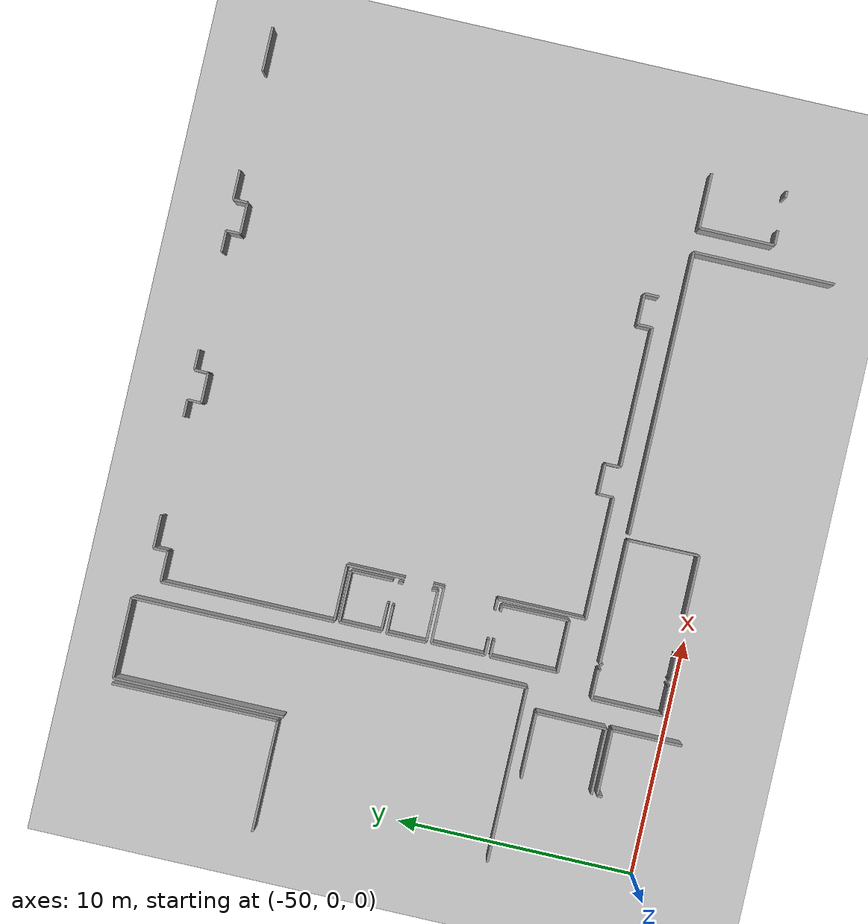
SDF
<sdf version="1.6">
 <world name="default">
  <model name="ground_plane">
   <static>1</static>
   <link name="link">
    <collision name="collision">
     <geometry><plane><normal>0 0 1</normal><size>100 100</size></plane></geometry>
     <surface><friction><ode><mu>100</mu><mu2>50</mu2></ode></friction></surface>
    </collision>
    <visual name="visual">
     <cast_shadows>0</cast_shadows>
     <geometry><plane><normal>0 0 1</normal><size>100 100</size></plane></geometry>
     <material>
      <script><uri>file://media/materials/scripts/gazebo.material</uri><name>Gazebo/Grey</name></script>
     </material>
    </visual>
   </link>
  </model>
  <model name="50010539">
   <static>1</static>
   <link name="Wall_16">
    <collision name="Wall_16_Collision">
     <geometry><box><size>4.6807753868 0.1 2.5</size></box></geometry>
     <pose>2.3403876934 0 1.25 0 0 0</pose>
    </collision>
    <visual name="Wall_16_Visual">
     <pose>2.3403876934 0 1.25 0 0 0</pose>
     <geometry><box><size>4.6807753868 0.1 2.5</size></box></geometry>
     <material>
      <script><uri>file://media/materials/scripts/gazebo.material</uri><name>Gazebo/Grey</name></script>
      <ambient>1 1 1 1</ambient>
     </material>
    </visual>
    <pose>15.9443357638 -7.03018216001 0 0 0 3.14159265359</pose>
   </link>
   <link name="Wall_21">
    <collision name="Wall_21_Collision">
     <geometry><box><size>7.02182654893 0.1 2.5</size></box></geometry>
     <pose>3.51091327446 0 1.25 0 0 0</pose>
    </collision>
    <visual name="Wall_21_Visual">
     <pose>3.51091327446 0 1.25 0 0 0</pose>
     <geometry><box><size>7.02182654893 0.1 2.5</size></box></geometry>
     <material>
      <script><uri>file://media/materials/scripts/gazebo.material</uri><name>Gazebo/Grey</name></script>
      <ambient>1 1 1 1</ambient>
     </material>
    </visual>
    <pose>15.9243921648 -0.00838393333503 0 0 0 -1.56795609346</pose>
   </link>
   <link name="Wall_22">
    <collision name="Wall_22_Collision">
     <geometry><box><size>7.37582886614 0.1 2.5</size></box></geometry>
     <pose>3.68791443307 0 1.25 0 0 0</pose>
    </collision>
    <visual name="Wall_22_Visual">
     <pose>3.68791443307 0 1.25 0 0 0</pose>
     <geometry><box><size>7.37582886614 0.1 2.5</size></box></geometry>
     <material>
      <script><uri>file://media/materials/scripts/gazebo.material</uri><name>Gazebo/Grey</name></script>
      <ambient>1 1 1 1</ambient>
     </material>
    </visual>
    <pose>19.5602245878 -16.7629125276 0 0 0 3.14159265359</pose>
   </link>
   <link name="Wall_26">
    <collision name="Wall_26_Collision">
     <geometry><box><size>7.21640710348 0.1 2.5</size></box></geometry>
     <pose>3.60820355174 0 1.25 0 0 0</pose>
    </collision>
    <visual name="Wall_26_Visual">
     <pose>3.60820355174 0 1.25 0 0 0</pose>
     <geometry><box><size>7.21640710348 0.1 2.5</size></box></geometry>
     <material>
      <script><uri>file://media/materials/scripts/gazebo.material</uri><name>Gazebo/Grey</name></script>
      <ambient>1 1 1 1</ambient>
     </material>
    </visual>
    <pose>16.1513935113 -7.23063438429 0 0 0 1.57079632679</pose>
   </link>
   <link name="Wall_27">
    <collision name="Wall_27_Collision">
     <geometry><box><size>3.39536597139 0.1 2.5</size></box></geometry>
     <pose>1.6976829857 0 1.25 0 0 0</pose>
    </collision>
    <visual name="Wall_27_Visual">
     <pose>1.6976829857 0 1.25 0 0 0</pose>
     <geometry><box><size>3.39536597139 0.1 2.5</size></box></geometry>
     <material>
      <script><uri>file://media/materials/scripts/gazebo.material</uri><name>Gazebo/Grey</name></script>
      <ambient>1 1 1 1</ambient>
     </material>
    </visual>
    <pose>16.1513935113 -0.014227280811 0 0 0 0.0</pose>
   </link>
   <link name="Wall_28">
    <collision name="Wall_28_Collision">
     <geometry><box><size>16.7486906595 0.1 2.5</size></box></geometry>
     <pose>8.37434532973 0 1.25 0 0 0</pose>
    </collision>
    <visual name="Wall_28_Visual">
     <pose>8.37434532973 0 1.25 0 0 0</pose>
     <geometry><box><size>16.7486906595 0.1 2.5</size></box></geometry>
     <material>
      <script><uri>file://media/materials/scripts/gazebo.material</uri><name>Gazebo/Grey</name></script>
      <ambient>1 1 1 1</ambient>
     </material>
    </visual>
    <pose>19.5467594827 -0.014227280811 0 0 0 -1.569992377</pose>
   </link>
   <link name="Wall_91">
    <collision name="Wall_91_Collision">
     <geometry><box><size>2.76390335611 0.1 2.5</size></box></geometry>
     <pose>1.38195167806 0 1.25 0 0 0</pose>
    </collision>
    <visual name="Wall_91_Visual">
     <pose>1.38195167806 0 1.25 0 0 0</pose>
     <geometry><box><size>2.76390335611 0.1 2.5</size></box></geometry>
     <material>
      <script><uri>file://media/materials/scripts/gazebo.material</uri><name>Gazebo/Grey</name></script>
      <ambient>1 1 1 1</ambient>
     </material>
    </visual>
    <pose>18.6337999543 -20.3324356597 0 0 0 3.14159265359</pose>
   </link>
   <link name="Wall_94">
    <collision name="Wall_94_Collision">
     <geometry><box><size>2.77025482076 0.1 2.5</size></box></geometry>
     <pose>1.38512741038 0 1.25 0 0 0</pose>
    </collision>
    <visual name="Wall_94_Visual">
     <pose>1.38512741038 0 1.25 0 0 0</pose>
     <geometry><box><size>2.77025482076 0.1 2.5</size></box></geometry>
     <material>
      <script><uri>file://media/materials/scripts/gazebo.material</uri><name>Gazebo/Grey</name></script>
      <ambient>1 1 1 1</ambient>
     </material>
    </visual>
    <pose>15.8698965982 -17.3577907065 0 0 0 0.0</pose>
   </link>
   <link name="Wall_95">
    <collision name="Wall_95_Collision">
     <geometry><box><size>2.97465173395 0.1 2.5</size></box></geometry>
     <pose>1.48732586697 0 1.25 0 0 0</pose>
    </collision>
    <visual name="Wall_95_Visual">
     <pose>1.48732586697 0 1.25 0 0 0</pose>
     <geometry><box><size>2.97465173395 0.1 2.5</size></box></geometry>
     <material>
      <script><uri>file://media/materials/scripts/gazebo.material</uri><name>Gazebo/Grey</name></script>
      <ambient>1 1 1 1</ambient>
     </material>
    </visual>
    <pose>18.6401514189 -17.3577907065 0 0 0 -1.57293152447</pose>
   </link>
   <link name="Wall_98">
    <collision name="Wall_98_Collision">
     <geometry><box><size>0.208455069739 0.1 2.5</size></box></geometry>
     <pose>0.10422753487 0 1.25 0 0 0</pose>
    </collision>
    <visual name="Wall_98_Visual">
     <pose>0.10422753487 0 1.25 0 0 0</pose>
     <geometry><box><size>0.208455069739 0.1 2.5</size></box></geometry>
     <material>
      <script><uri>file://media/materials/scripts/gazebo.material</uri><name>Gazebo/Grey</name></script>
      <ambient>1 1 1 1</ambient>
     </material>
    </visual>
    <pose>15.8782805315 -20.7808490638 0 0 0 1.57079632679</pose>
   </link>
   <link name="Wall_99">
    <collision name="Wall_99_Collision">
     <geometry><box><size>2.76822235207 0.1 2.5</size></box></geometry>
     <pose>1.38411117604 0 1.25 0 0 0</pose>
    </collision>
    <visual name="Wall_99_Visual">
     <pose>1.38411117604 0 1.25 0 0 0</pose>
     <geometry><box><size>2.76822235207 0.1 2.5</size></box></geometry>
     <material>
      <script><uri>file://media/materials/scripts/gazebo.material</uri><name>Gazebo/Grey</name></script>
      <ambient>1 1 1 1</ambient>
     </material>
    </visual>
    <pose>15.8782805315 -20.5723939941 0 0 0 0.0</pose>
   </link>
   <link name="Wall_100">
    <collision name="Wall_100_Collision">
     <geometry><box><size>2.95459359299 0.1 2.5</size></box></geometry>
     <pose>1.47729679649 0 1.25 0 0 0</pose>
    </collision>
    <visual name="Wall_100_Visual">
     <pose>1.47729679649 0 1.25 0 0 0</pose>
     <geometry><box><size>2.95459359299 0.1 2.5</size></box></geometry>
     <material>
      <script><uri>file://media/materials/scripts/gazebo.material</uri><name>Gazebo/Grey</name></script>
      <ambient>1 1 1 1</ambient>
     </material>
    </visual>
    <pose>18.6465028836 -20.5723939941 0 0 0 -1.56718483727</pose>
   </link>
   <link name="Wall_136">
    <collision name="Wall_136_Collision">
     <geometry><box><size>2.57729732476 0.1 2.5</size></box></geometry>
     <pose>1.28864866238 0 1.25 0 0 0</pose>
    </collision>
    <visual name="Wall_136_Visual">
     <pose>1.28864866238 0 1.25 0 0 0</pose>
     <geometry><box><size>2.57729732476 0.1 2.5</size></box></geometry>
     <material>
      <script><uri>file://media/materials/scripts/gazebo.material</uri><name>Gazebo/Grey</name></script>
      <ambient>1 1 1 1</ambient>
     </material>
    </visual>
    <pose>26.4530880821 -22.4741495389 0 0 0 3.14159265359</pose>
   </link>
   <link name="Wall_137">
    <collision name="Wall_137_Collision">
     <geometry><box><size>1.09766012042 0.1 2.5</size></box></geometry>
     <pose>0.548830060212 0 1.25 0 0 0</pose>
    </collision>
    <visual name="Wall_137_Visual">
     <pose>0.548830060212 0 1.25 0 0 0</pose>
     <geometry><box><size>1.09766012042 0.1 2.5</size></box></geometry>
     <material>
      <script><uri>file://media/materials/scripts/gazebo.material</uri><name>Gazebo/Grey</name></script>
      <ambient>1 1 1 1</ambient>
     </material>
    </visual>
    <pose>22.2792866035 -22.4741495389 0 0 0 3.14159265359</pose>
   </link>
   <link name="Wall_138">
    <collision name="Wall_138_Collision">
     <geometry><box><size>0.0896826808262 0.1 2.5</size></box></geometry>
     <pose>0.0448413404131 0 1.25 0 0 0</pose>
    </collision>
    <visual name="Wall_138_Visual">
     <pose>0.0448413404131 0 1.25 0 0 0</pose>
     <geometry><box><size>0.0896826808262 0.1 2.5</size></box></geometry>
     <material>
      <script><uri>file://media/materials/scripts/gazebo.material</uri><name>Gazebo/Grey</name></script>
      <ambient>1 1 1 1</ambient>
     </material>
    </visual>
    <pose>21.1816264831 -22.4741495389 0 0 0 1.57079632679</pose>
   </link>
   <link name="Wall_139">
    <collision name="Wall_139_Collision">
     <geometry><box><size>0.131856406087 0.1 2.5</size></box></geometry>
     <pose>0.0659282030436 0 1.25 0 0 0</pose>
    </collision>
    <visual name="Wall_139_Visual">
     <pose>0.0659282030436 0 1.25 0 0 0</pose>
     <geometry><box><size>0.131856406087 0.1 2.5</size></box></geometry>
     <material>
      <script><uri>file://media/materials/scripts/gazebo.material</uri><name>Gazebo/Grey</name></script>
      <ambient>1 1 1 1</ambient>
     </material>
    </visual>
    <pose>21.1816264831 -19.6003658444 0 0 0 1.57079632679</pose>
   </link>
   <link name="Wall_140">
    <collision name="Wall_140_Collision">
     <geometry><box><size>5.25761540611 0.1 2.5</size></box></geometry>
     <pose>2.62880770306 0 1.25 0 0 0</pose>
    </collision>
    <visual name="Wall_140_Visual">
     <pose>2.62880770306 0 1.25 0 0 0</pose>
     <geometry><box><size>5.25761540611 0.1 2.5</size></box></geometry>
     <material>
      <script><uri>file://media/materials/scripts/gazebo.material</uri><name>Gazebo/Grey</name></script>
      <ambient>1 1 1 1</ambient>
     </material>
    </visual>
    <pose>21.1816264831 -19.4685094383 0 0 0 0.0</pose>
   </link>
   <link name="Wall_141">
    <collision name="Wall_141_Collision">
     <geometry><box><size>3.00567199332 0.1 2.5</size></box></geometry>
     <pose>1.50283599666 0 1.25 0 0 0</pose>
    </collision>
    <visual name="Wall_141_Visual">
     <pose>1.50283599666 0 1.25 0 0 0</pose>
     <geometry><box><size>3.00567199332 0.1 2.5</size></box></geometry>
     <material>
      <script><uri>file://media/materials/scripts/gazebo.material</uri><name>Gazebo/Grey</name></script>
      <ambient>1 1 1 1</ambient>
     </material>
    </visual>
    <pose>26.4392418892 -19.4685094383 0 0 0 -1.56618962256</pose>
   </link>
   <link name="Wall_142">
    <collision name="Wall_142_Collision">
     <geometry><box><size>1.27105510531 0.1 2.5</size></box></geometry>
     <pose>0.635527552654 0 1.25 0 0 0</pose>
    </collision>
    <visual name="Wall_142_Visual">
     <pose>0.635527552654 0 1.25 0 0 0</pose>
     <geometry><box><size>1.27105510531 0.1 2.5</size></box></geometry>
     <material>
      <script><uri>file://media/materials/scripts/gazebo.material</uri><name>Gazebo/Grey</name></script>
      <ambient>1 1 1 1</ambient>
     </material>
    </visual>
    <pose>20.9630090699 -22.4712278651 0 0 0 3.14159265359</pose>
   </link>
   <link name="Wall_143">
    <collision name="Wall_143_Collision">
     <geometry><box><size>3.00691039354 0.1 2.5</size></box></geometry>
     <pose>1.50345519677 0 1.25 0 0 0</pose>
    </collision>
    <visual name="Wall_143_Visual">
     <pose>1.50345519677 0 1.25 0 0 0</pose>
     <geometry><box><size>3.00691039354 0.1 2.5</size></box></geometry>
     <material>
      <script><uri>file://media/materials/scripts/gazebo.material</uri><name>Gazebo/Grey</name></script>
      <ambient>1 1 1 1</ambient>
     </material>
    </visual>
    <pose>19.6919539646 -22.4712278651 0 0 0 1.57079632679</pose>
   </link>
   <link name="Wall_144">
    <collision name="Wall_144_Collision">
     <geometry><box><size>1.26622799217 0.1 2.5</size></box></geometry>
     <pose>0.633113996087 0 1.25 0 0 0</pose>
    </collision>
    <visual name="Wall_144_Visual">
     <pose>0.633113996087 0 1.25 0 0 0</pose>
     <geometry><box><size>1.26622799217 0.1 2.5</size></box></geometry>
     <material>
      <script><uri>file://media/materials/scripts/gazebo.material</uri><name>Gazebo/Grey</name></script>
      <ambient>1 1 1 1</ambient>
     </material>
    </visual>
    <pose>19.6919539646 -19.4643174716 0 0 0 0.0</pose>
   </link>
   <link name="Wall_145">
    <collision name="Wall_145_Collision">
     <geometry><box><size>0.108610045476 0.1 2.5</size></box></geometry>
     <pose>0.0543050227382 0 1.25 0 0 0</pose>
    </collision>
    <visual name="Wall_145_Visual">
     <pose>0.0543050227382 0 1.25 0 0 0</pose>
     <geometry><box><size>0.108610045476 0.1 2.5</size></box></geometry>
     <material>
      <script><uri>file://media/materials/scripts/gazebo.material</uri><name>Gazebo/Grey</name></script>
      <ambient>1 1 1 1</ambient>
     </material>
    </visual>
    <pose>20.9581819568 -19.4643174716 0 0 0 -1.57079632679</pose>
   </link>
   <link name="Wall_146">
    <collision name="Wall_146_Collision">
     <geometry><box><size>0.0952673118616 0.1 2.5</size></box></geometry>
     <pose>0.0476336559308 0 1.25 0 0 0</pose>
    </collision>
    <visual name="Wall_146_Visual">
     <pose>0.0476336559308 0 1.25 0 0 0</pose>
     <geometry><box><size>0.0952673118616 0.1 2.5</size></box></geometry>
     <material>
      <script><uri>file://media/materials/scripts/gazebo.material</uri><name>Gazebo/Grey</name></script>
      <ambient>1 1 1 1</ambient>
     </material>
    </visual>
    <pose>20.9581819568 -22.3760829247 0 0 0 -1.52010547682</pose>
   </link>
   <link name="Wall_150">
    <collision name="Wall_150_Collision">
     <geometry><box><size>11.9750514469 0.1 2.5</size></box></geometry>
     <pose>5.98752572343 0 1.25 0 0 0</pose>
    </collision>
    <visual name="Wall_150_Visual">
     <pose>5.98752572343 0 1.25 0 0 0</pose>
     <geometry><box><size>11.9750514469 0.1 2.5</size></box></geometry>
     <material>
      <script><uri>file://media/materials/scripts/gazebo.material</uri><name>Gazebo/Grey</name></script>
      <ambient>1 1 1 1</ambient>
     </material>
    </visual>
    <pose>26.6617972104 -19.4582200655 0 0 0 0.0</pose>
   </link>
   <link name="Wall_151">
    <collision name="Wall_151_Collision">
     <geometry><box><size>5.96897944666 0.1 2.5</size></box></geometry>
     <pose>2.98448972333 0 1.25 0 0 0</pose>
    </collision>
    <visual name="Wall_151_Visual">
     <pose>2.98448972333 0 1.25 0 0 0</pose>
     <geometry><box><size>5.96897944666 0.1 2.5</size></box></geometry>
     <material>
      <script><uri>file://media/materials/scripts/gazebo.material</uri><name>Gazebo/Grey</name></script>
      <ambient>1 1 1 1</ambient>
     </material>
    </visual>
    <pose>38.6368486573 -19.4582200655 0 0 0 -1.57079632679</pose>
   </link>
   <link name="Wall_194">
    <collision name="Wall_194_Collision">
     <geometry><box><size>0.285561850563 0.1 2.5</size></box></geometry>
     <pose>0.142780925281 0 1.25 0 0 0</pose>
    </collision>
    <visual name="Wall_194_Visual">
     <pose>0.142780925281 0 1.25 0 0 0</pose>
     <geometry><box><size>0.285561850563 0.1 2.5</size></box></geometry>
     <material>
      <script><uri>file://media/materials/scripts/gazebo.material</uri><name>Gazebo/Grey</name></script>
      <ambient>1 1 1 1</ambient>
     </material>
    </visual>
    <pose>41.9534564671 -22.6483066995 0 0 0 3.14159265359</pose>
   </link>
   <link name="Wall_195">
    <collision name="Wall_195_Collision">
     <geometry><box><size>0.624348974874 0.1 2.5</size></box></geometry>
     <pose>0.312174487437 0 1.25 0 0 0</pose>
    </collision>
    <visual name="Wall_195_Visual">
     <pose>0.312174487437 0 1.25 0 0 0</pose>
     <geometry><box><size>0.624348974874 0.1 2.5</size></box></geometry>
     <material>
      <script><uri>file://media/materials/scripts/gazebo.material</uri><name>Gazebo/Grey</name></script>
      <ambient>1 1 1 1</ambient>
     </material>
    </visual>
    <pose>40.2797185031 -22.6483066995 0 0 0 3.14159265359</pose>
   </link>
   <link name="Wall_196">
    <collision name="Wall_196_Collision">
     <geometry><box><size>3.19008663398 0.1 2.5</size></box></geometry>
     <pose>1.59504331699 0 1.25 0 0 0</pose>
    </collision>
    <visual name="Wall_196_Visual">
     <pose>1.59504331699 0 1.25 0 0 0</pose>
     <geometry><box><size>3.19008663398 0.1 2.5</size></box></geometry>
     <material>
      <script><uri>file://media/materials/scripts/gazebo.material</uri><name>Gazebo/Grey</name></script>
      <ambient>1 1 1 1</ambient>
     </material>
    </visual>
    <pose>39.6553695282 -22.6483066995 0 0 0 1.57079632679</pose>
   </link>
   <link name="Wall_197">
    <collision name="Wall_197_Collision">
     <geometry><box><size>2.31206016107 0.1 2.5</size></box></geometry>
     <pose>1.15603008054 0 1.25 0 0 0</pose>
    </collision>
    <visual name="Wall_197_Visual">
     <pose>1.15603008054 0 1.25 0 0 0</pose>
     <geometry><box><size>2.31206016107 0.1 2.5</size></box></geometry>
     <material>
      <script><uri>file://media/materials/scripts/gazebo.material</uri><name>Gazebo/Grey</name></script>
      <ambient>1 1 1 1</ambient>
     </material>
    </visual>
    <pose>39.6553695282 -19.4582200655 0 0 0 0.0</pose>
   </link>
   <link name="Wall_216">
    <collision name="Wall_216_Collision">
     <geometry><box><size>0.607454078911 0.1 2.5</size></box></geometry>
     <pose>0.303727039455 0 1.25 0 0 0</pose>
    </collision>
    <visual name="Wall_216_Visual">
     <pose>0.303727039455 0 1.25 0 0 0</pose>
     <geometry><box><size>0.607454078911 0.1 2.5</size></box></geometry>
     <material>
      <script><uri>file://media/materials/scripts/gazebo.material</uri><name>Gazebo/Grey</name></script>
      <ambient>1 1 1 1</ambient>
     </material>
    </visual>
    <pose>36.5159675821 -18.4755214552 0 0 0 1.57079632679</pose>
   </link>
   <link name="Wall_217">
    <collision name="Wall_217_Collision">
     <geometry><box><size>1.3037016336 0.1 2.5</size></box></geometry>
     <pose>0.651850816798 0 1.25 0 0 0</pose>
    </collision>
    <visual name="Wall_217_Visual">
     <pose>0.651850816798 0 1.25 0 0 0</pose>
     <geometry><box><size>1.3037016336 0.1 2.5</size></box></geometry>
     <material>
      <script><uri>file://media/materials/scripts/gazebo.material</uri><name>Gazebo/Grey</name></script>
      <ambient>1 1 1 1</ambient>
     </material>
    </visual>
    <pose>36.5159675821 -17.8680673763 0 0 0 3.14159265359</pose>
   </link>
   <link name="Wall_218">
    <collision name="Wall_218_Collision">
     <geometry><box><size>0.626508472854 0.1 2.5</size></box></geometry>
     <pose>0.313254236427 0 1.25 0 0 0</pose>
    </collision>
    <visual name="Wall_218_Visual">
     <pose>0.313254236427 0 1.25 0 0 0</pose>
     <geometry><box><size>0.626508472854 0.1 2.5</size></box></geometry>
     <material>
      <script><uri>file://media/materials/scripts/gazebo.material</uri><name>Gazebo/Grey</name></script>
      <ambient>1 1 1 1</ambient>
     </material>
    </visual>
    <pose>35.2122659485 -17.8680673763 0 0 0 -1.57079632679</pose>
   </link>
   <link name="Wall_219">
    <collision name="Wall_219_Collision">
     <geometry><box><size>5.9050837123 0.1 2.5</size></box></geometry>
     <pose>2.95254185615 0 1.25 0 0 0</pose>
    </collision>
    <visual name="Wall_219_Visual">
     <pose>2.95254185615 0 1.25 0 0 0</pose>
     <geometry><box><size>5.9050837123 0.1 2.5</size></box></geometry>
     <material>
      <script><uri>file://media/materials/scripts/gazebo.material</uri><name>Gazebo/Grey</name></script>
      <ambient>1 1 1 1</ambient>
     </material>
    </visual>
    <pose>35.2122659485 -18.4945758492 0 0 0 3.14159265359</pose>
   </link>
   <link name="Wall_220">
    <collision name="Wall_220_Collision">
     <geometry><box><size>0.650517009222 0.1 2.5</size></box></geometry>
     <pose>0.325258504611 0 1.25 0 0 0</pose>
    </collision>
    <visual name="Wall_220_Visual">
     <pose>0.325258504611 0 1.25 0 0 0</pose>
     <geometry><box><size>0.650517009222 0.1 2.5</size></box></geometry>
     <material>
      <script><uri>file://media/materials/scripts/gazebo.material</uri><name>Gazebo/Grey</name></script>
      <ambient>1 1 1 1</ambient>
     </material>
    </visual>
    <pose>29.3071822362 -18.4945758492 0 0 0 1.57079632679</pose>
   </link>
   <link name="Wall_221">
    <collision name="Wall_221_Collision">
     <geometry><box><size>1.28833108915 0.1 2.5</size></box></geometry>
     <pose>0.644165544575 0 1.25 0 0 0</pose>
    </collision>
    <visual name="Wall_221_Visual">
     <pose>0.644165544575 0 1.25 0 0 0</pose>
     <geometry><box><size>1.28833108915 0.1 2.5</size></box></geometry>
     <material>
      <script><uri>file://media/materials/scripts/gazebo.material</uri><name>Gazebo/Grey</name></script>
      <ambient>1 1 1 1</ambient>
     </material>
    </visual>
    <pose>29.3071822362 -17.84405884 0 0 0 3.14159265359</pose>
   </link>
   <link name="Wall_222">
    <collision name="Wall_222_Collision">
     <geometry><box><size>0.648103452656 0.1 2.5</size></box></geometry>
     <pose>0.324051726328 0 1.25 0 0 0</pose>
    </collision>
    <visual name="Wall_222_Visual">
     <pose>0.324051726328 0 1.25 0 0 0</pose>
     <geometry><box><size>0.648103452656 0.1 2.5</size></box></geometry>
     <material>
      <script><uri>file://media/materials/scripts/gazebo.material</uri><name>Gazebo/Grey</name></script>
      <ambient>1 1 1 1</ambient>
     </material>
    </visual>
    <pose>28.0188511471 -17.84405884 0 0 0 -1.57079632679</pose>
   </link>
   <link name="Wall_223">
    <collision name="Wall_223_Collision">
     <geometry><box><size>5.15002159498 0.1 2.5</size></box></geometry>
     <pose>2.57501079749 0 1.25 0 0 0</pose>
    </collision>
    <visual name="Wall_223_Visual">
     <pose>2.57501079749 0 1.25 0 0 0</pose>
     <geometry><box><size>5.15002159498 0.1 2.5</size></box></geometry>
     <material>
      <script><uri>file://media/materials/scripts/gazebo.material</uri><name>Gazebo/Grey</name></script>
      <ambient>1 1 1 1</ambient>
     </material>
    </visual>
    <pose>28.0188511471 -18.4921622926 0 0 0 3.14159265359</pose>
   </link>
   <link name="Wall_224">
    <collision name="Wall_224_Collision">
     <geometry><box><size>3.7325017149 0.1 2.5</size></box></geometry>
     <pose>1.86625085745 0 1.25 0 0 0</pose>
    </collision>
    <visual name="Wall_224_Visual">
     <pose>1.86625085745 0 1.25 0 0 0</pose>
     <geometry><box><size>3.7325017149 0.1 2.5</size></box></geometry>
     <material>
      <script><uri>file://media/materials/scripts/gazebo.material</uri><name>Gazebo/Grey</name></script>
      <ambient>1 1 1 1</ambient>
     </material>
    </visual>
    <pose>22.8688295521 -18.4921622926 0 0 0 1.57079632679</pose>
   </link>
   <link name="Wall_225">
    <collision name="Wall_225_Collision">
     <geometry><box><size>0.475216584944 0.1 2.5</size></box></geometry>
     <pose>0.237608292472 0 1.25 0 0 0</pose>
    </collision>
    <visual name="Wall_225_Visual">
     <pose>0.237608292472 0 1.25 0 0 0</pose>
     <geometry><box><size>0.475216584944 0.1 2.5</size></box></geometry>
     <material>
      <script><uri>file://media/materials/scripts/gazebo.material</uri><name>Gazebo/Grey</name></script>
      <ambient>1 1 1 1</ambient>
     </material>
    </visual>
    <pose>22.8688295521 -14.7596605777 0 0 0 3.14159265359</pose>
   </link>
   <link name="Wall_226">
    <collision name="Wall_226_Collision">
     <geometry><box><size>0.662711821346 0.1 2.5</size></box></geometry>
     <pose>0.331355910673 0 1.25 0 0 0</pose>
    </collision>
    <visual name="Wall_226_Visual">
     <pose>0.331355910673 0 1.25 0 0 0</pose>
     <geometry><box><size>0.662711821346 0.1 2.5</size></box></geometry>
     <material>
      <script><uri>file://media/materials/scripts/gazebo.material</uri><name>Gazebo/Grey</name></script>
      <ambient>1 1 1 1</ambient>
     </material>
    </visual>
    <pose>21.1508853942 -14.7596605777 0 0 0 3.14159265359</pose>
   </link>
   <link name="Wall_227">
    <collision name="Wall_227_Collision">
     <geometry><box><size>2.27102969945 0.1 2.5</size></box></geometry>
     <pose>1.13551484972 0 1.25 0 0 0</pose>
    </collision>
    <visual name="Wall_227_Visual">
     <pose>1.13551484972 0 1.25 0 0 0</pose>
     <geometry><box><size>2.27102969945 0.1 2.5</size></box></geometry>
     <material>
      <script><uri>file://media/materials/scripts/gazebo.material</uri><name>Gazebo/Grey</name></script>
      <ambient>1 1 1 1</ambient>
     </material>
    </visual>
    <pose>20.4881735728 -14.7596605777 0 0 0 1.57079632679</pose>
   </link>
   <link name="Wall_228">
    <collision name="Wall_228_Collision">
     <geometry><box><size>2.35563120856 0.1 2.5</size></box></geometry>
     <pose>1.17781560428 0 1.25 0 0 0</pose>
    </collision>
    <visual name="Wall_228_Visual">
     <pose>1.17781560428 0 1.25 0 0 0</pose>
     <geometry><box><size>2.35563120856 0.1 2.5</size></box></geometry>
     <material>
      <script><uri>file://media/materials/scripts/gazebo.material</uri><name>Gazebo/Grey</name></script>
      <ambient>1 1 1 1</ambient>
     </material>
    </visual>
    <pose>20.4881735728 -12.4886308783 0 0 0 0.0</pose>
   </link>
   <link name="Wall_229">
    <collision name="Wall_229_Collision">
     <geometry><box><size>0.452859429384 0.1 2.5</size></box></geometry>
     <pose>0.226429714692 0 1.25 0 0 0</pose>
    </collision>
    <visual name="Wall_229_Visual">
     <pose>0.226429714692 0 1.25 0 0 0</pose>
     <geometry><box><size>0.452859429384 0.1 2.5</size></box></geometry>
     <material>
      <script><uri>file://media/materials/scripts/gazebo.material</uri><name>Gazebo/Grey</name></script>
      <ambient>1 1 1 1</ambient>
     </material>
    </visual>
    <pose>22.8438047814 -12.4886308783 0 0 0 1.57079632679</pose>
   </link>
   <link name="Wall_230">
    <collision name="Wall_230_Collision">
     <geometry><box><size>2.43972460049 0.1 2.5</size></box></geometry>
     <pose>1.21986230025 0 1.25 0 0 0</pose>
    </collision>
    <visual name="Wall_230_Visual">
     <pose>1.21986230025 0 1.25 0 0 0</pose>
     <geometry><box><size>2.43972460049 0.1 2.5</size></box></geometry>
     <material>
      <script><uri>file://media/materials/scripts/gazebo.material</uri><name>Gazebo/Grey</name></script>
      <ambient>1 1 1 1</ambient>
     </material>
    </visual>
    <pose>22.8438047814 -10.8230227891 0 0 0 1.57079632679</pose>
   </link>
   <link name="Wall_231">
    <collision name="Wall_231_Collision">
     <geometry><box><size>2.38929397119 0.1 2.5</size></box></geometry>
     <pose>1.19464698559 0 1.25 0 0 0</pose>
    </collision>
    <visual name="Wall_231_Visual">
     <pose>1.19464698559 0 1.25 0 0 0</pose>
     <geometry><box><size>2.38929397119 0.1 2.5</size></box></geometry>
     <material>
      <script><uri>file://media/materials/scripts/gazebo.material</uri><name>Gazebo/Grey</name></script>
      <ambient>1 1 1 1</ambient>
     </material>
    </visual>
    <pose>22.8438047814 -8.38329818856 0 0 0 3.14159265359</pose>
   </link>
   <link name="Wall_232">
    <collision name="Wall_232_Collision">
     <geometry><box><size>7.33924442977 0.1 2.5</size></box></geometry>
     <pose>3.66962221488 0 1.25 0 0 0</pose>
    </collision>
    <visual name="Wall_232_Visual">
     <pose>3.66962221488 0 1.25 0 0 0</pose>
     <geometry><box><size>7.33924442977 0.1 2.5</size></box></geometry>
     <material>
      <script><uri>file://media/materials/scripts/gazebo.material</uri><name>Gazebo/Grey</name></script>
      <ambient>1 1 1 1</ambient>
     </material>
    </visual>
    <pose>20.4545108102 -8.38329818856 0 0 0 1.57079632679</pose>
   </link>
   <link name="Wall_233">
    <collision name="Wall_233_Collision">
     <geometry><box><size>1.29506364168 0.1 2.5</size></box></geometry>
     <pose>0.647531820838 0 1.25 0 0 0</pose>
    </collision>
    <visual name="Wall_233_Visual">
     <pose>0.647531820838 0 1.25 0 0 0</pose>
     <geometry><box><size>1.29506364168 0.1 2.5</size></box></geometry>
     <material>
      <script><uri>file://media/materials/scripts/gazebo.material</uri><name>Gazebo/Grey</name></script>
      <ambient>1 1 1 1</ambient>
     </material>
    </visual>
    <pose>20.4545108102 -1.0440537588 0 0 0 0.0</pose>
   </link>
   <link name="Wall_234">
    <collision name="Wall_234_Collision">
     <geometry><box><size>0.601356672849 0.1 2.5</size></box></geometry>
     <pose>0.300678336424 0 1.25 0 0 0</pose>
    </collision>
    <visual name="Wall_234_Visual">
     <pose>0.300678336424 0 1.25 0 0 0</pose>
     <geometry><box><size>0.601356672849 0.1 2.5</size></box></geometry>
     <material>
      <script><uri>file://media/materials/scripts/gazebo.material</uri><name>Gazebo/Grey</name></script>
      <ambient>1 1 1 1</ambient>
     </material>
    </visual>
    <pose>21.7495744519 -1.0440537588 0 0 0 1.57079632679</pose>
   </link>
   <link name="Wall_235">
    <collision name="Wall_235_Collision">
     <geometry><box><size>1.40316556998 0.1 2.5</size></box></geometry>
     <pose>0.70158278499 0 1.25 0 0 0</pose>
    </collision>
    <visual name="Wall_235_Visual">
     <pose>0.70158278499 0 1.25 0 0 0</pose>
     <geometry><box><size>1.40316556998 0.1 2.5</size></box></geometry>
     <material>
      <script><uri>file://media/materials/scripts/gazebo.material</uri><name>Gazebo/Grey</name></script>
      <ambient>1 1 1 1</ambient>
     </material>
    </visual>
    <pose>21.7495744519 -0.442697085948 0 0 0 0.0</pose>
   </link>
   <link name="Wall_236">
    <collision name="Wall_236_Collision">
     <geometry><box><size>0.726226467823 0.1 2.5</size></box></geometry>
     <pose>0.363113233912 0 1.25 0 0 0</pose>
    </collision>
    <visual name="Wall_236_Visual">
     <pose>0.363113233912 0 1.25 0 0 0</pose>
     <geometry><box><size>0.726226467823 0.1 2.5</size></box></geometry>
     <material>
      <script><uri>file://media/materials/scripts/gazebo.material</uri><name>Gazebo/Grey</name></script>
      <ambient>1 1 1 1</ambient>
     </material>
    </visual>
    <pose>27.3052005793 -0.442697085948 0 0 0 0.0</pose>
   </link>
   <link name="Wall_237">
    <collision name="Wall_237_Collision">
     <geometry><box><size>0.58293742537 0.1 2.5</size></box></geometry>
     <pose>0.291468712685 0 1.25 0 0 0</pose>
    </collision>
    <visual name="Wall_237_Visual">
     <pose>0.291468712685 0 1.25 0 0 0</pose>
     <geometry><box><size>0.58293742537 0.1 2.5</size></box></geometry>
     <material>
      <script><uri>file://media/materials/scripts/gazebo.material</uri><name>Gazebo/Grey</name></script>
      <ambient>1 1 1 1</ambient>
     </material>
    </visual>
    <pose>28.0314270471 -0.442697085948 0 0 0 -1.57079632679</pose>
   </link>
   <link name="Wall_238">
    <collision name="Wall_238_Collision">
     <geometry><box><size>1.2694037245 0.1 2.5</size></box></geometry>
     <pose>0.634701862249 0 1.25 0 0 0</pose>
    </collision>
    <visual name="Wall_238_Visual">
     <pose>0.634701862249 0 1.25 0 0 0</pose>
     <geometry><box><size>1.2694037245 0.1 2.5</size></box></geometry>
     <material>
      <script><uri>file://media/materials/scripts/gazebo.material</uri><name>Gazebo/Grey</name></script>
      <ambient>1 1 1 1</ambient>
     </material>
    </visual>
    <pose>28.0314270471 -1.02563451132 0 0 0 0.0</pose>
   </link>
   <link name="Wall_239">
    <collision name="Wall_239_Collision">
     <geometry><box><size>0.581031985976 0.1 2.5</size></box></geometry>
     <pose>0.290515992988 0 1.25 0 0 0</pose>
    </collision>
    <visual name="Wall_239_Visual">
     <pose>0.290515992988 0 1.25 0 0 0</pose>
     <geometry><box><size>0.581031985976 0.1 2.5</size></box></geometry>
     <material>
      <script><uri>file://media/materials/scripts/gazebo.material</uri><name>Gazebo/Grey</name></script>
      <ambient>1 1 1 1</ambient>
     </material>
    </visual>
    <pose>29.3008307716 -1.02563451132 0 0 0 1.57079632679</pose>
   </link>
   <link name="Wall_240">
    <collision name="Wall_240_Collision">
     <geometry><box><size>0.865323543609 0.1 2.5</size></box></geometry>
     <pose>0.432661771805 0 1.25 0 0 0</pose>
    </collision>
    <visual name="Wall_240_Visual">
     <pose>0.432661771805 0 1.25 0 0 0</pose>
     <geometry><box><size>0.865323543609 0.1 2.5</size></box></geometry>
     <material>
      <script><uri>file://media/materials/scripts/gazebo.material</uri><name>Gazebo/Grey</name></script>
      <ambient>1 1 1 1</ambient>
     </material>
    </visual>
    <pose>29.3008307716 -0.444602525342 0 0 0 0.0</pose>
   </link>
   <link name="Wall_241">
    <collision name="Wall_241_Collision">
     <geometry><box><size>0.890475343614 0.1 2.5</size></box></geometry>
     <pose>0.445237671807 0 1.25 0 0 0</pose>
    </collision>
    <visual name="Wall_241_Visual">
     <pose>0.445237671807 0 1.25 0 0 0</pose>
     <geometry><box><size>0.890475343614 0.1 2.5</size></box></geometry>
     <material>
      <script><uri>file://media/materials/scripts/gazebo.material</uri><name>Gazebo/Grey</name></script>
      <ambient>1 1 1 1</ambient>
     </material>
    </visual>
    <pose>34.3028632403 -0.444602525342 0 0 0 0.0</pose>
   </link>
   <link name="Wall_242">
    <collision name="Wall_242_Collision">
     <geometry><box><size>0.593607885979 0.1 2.5</size></box></geometry>
     <pose>0.296803942989 0 1.25 0 0 0</pose>
    </collision>
    <visual name="Wall_242_Visual">
     <pose>0.296803942989 0 1.25 0 0 0</pose>
     <geometry><box><size>0.593607885979 0.1 2.5</size></box></geometry>
     <material>
      <script><uri>file://media/materials/scripts/gazebo.material</uri><name>Gazebo/Grey</name></script>
      <ambient>1 1 1 1</ambient>
     </material>
    </visual>
    <pose>35.1933385839 -0.444602525342 0 0 0 -1.57079632679</pose>
   </link>
   <link name="Wall_243">
    <collision name="Wall_243_Collision">
     <geometry><box><size>1.32631284774 0.1 2.5</size></box></geometry>
     <pose>0.663156423871 0 1.25 0 0 0</pose>
    </collision>
    <visual name="Wall_243_Visual">
     <pose>0.663156423871 0 1.25 0 0 0</pose>
     <geometry><box><size>1.32631284774 0.1 2.5</size></box></geometry>
     <material>
      <script><uri>file://media/materials/scripts/gazebo.material</uri><name>Gazebo/Grey</name></script>
      <ambient>1 1 1 1</ambient>
     </material>
    </visual>
    <pose>35.1933385839 -1.03821041132 0 0 0 0.0</pose>
   </link>
   <link name="Wall_244">
    <collision name="Wall_244_Collision">
     <geometry><box><size>0.606183785981 0.1 2.5</size></box></geometry>
     <pose>0.303091892991 0 1.25 0 0 0</pose>
    </collision>
    <visual name="Wall_244_Visual">
     <pose>0.303091892991 0 1.25 0 0 0</pose>
     <geometry><box><size>0.606183785981 0.1 2.5</size></box></geometry>
     <material>
      <script><uri>file://media/materials/scripts/gazebo.material</uri><name>Gazebo/Grey</name></script>
      <ambient>1 1 1 1</ambient>
     </material>
    </visual>
    <pose>36.5196514316 -1.03821041132 0 0 0 1.57079632679</pose>
   </link>
   <link name="Wall_245">
    <collision name="Wall_245_Collision">
     <geometry><box><size>1.23777343055 0.1 2.5</size></box></geometry>
     <pose>0.618886715277 0 1.25 0 0 0</pose>
    </collision>
    <visual name="Wall_245_Visual">
     <pose>0.618886715277 0 1.25 0 0 0</pose>
     <geometry><box><size>1.23777343055 0.1 2.5</size></box></geometry>
     <material>
      <script><uri>file://media/materials/scripts/gazebo.material</uri><name>Gazebo/Grey</name></script>
      <ambient>1 1 1 1</ambient>
     </material>
    </visual>
    <pose>36.5196514316 -0.43202662534 0 0 0 0.0</pose>
   </link>
   <link name="Wall_246">
    <collision name="Wall_246_Collision">
     <geometry><box><size>1.85678717512 0.1 2.5</size></box></geometry>
     <pose>0.928393587561 0 1.25 0 0 0</pose>
    </collision>
    <visual name="Wall_246_Visual">
     <pose>0.928393587561 0 1.25 0 0 0</pose>
     <geometry><box><size>1.85678717512 0.1 2.5</size></box></geometry>
     <material>
      <script><uri>file://media/materials/scripts/gazebo.material</uri><name>Gazebo/Grey</name></script>
      <ambient>1 1 1 1</ambient>
     </material>
    </visual>
    <pose>41.9573943751 -0.43202662534 0 0 0 0.0</pose>
   </link>
   <link name="Wall_256">
    <collision name="Wall_256_Collision">
     <geometry><box><size>2.17766316913 0.1 2.5</size></box></geometry>
     <pose>1.08883158456 0 1.25 0 0 0</pose>
    </collision>
    <visual name="Wall_256_Visual">
     <pose>1.08883158456 0 1.25 0 0 0</pose>
     <geometry><box><size>2.17766316913 0.1 2.5</size></box></geometry>
     <material>
      <script><uri>file://media/materials/scripts/gazebo.material</uri><name>Gazebo/Grey</name></script>
      <ambient>1 1 1 1</ambient>
     </material>
    </visual>
    <pose>22.6464012601 -12.2692512893 0 0 0 3.14159265359</pose>
   </link>
   <link name="Wall_257">
    <collision name="Wall_257_Collision">
     <geometry><box><size>1.66662432357 0.1 2.5</size></box></geometry>
     <pose>0.833312161785 0 1.25 0 0 0</pose>
    </collision>
    <visual name="Wall_257_Visual">
     <pose>0.833312161785 0 1.25 0 0 0</pose>
     <geometry><box><size>1.66662432357 0.1 2.5</size></box></geometry>
     <material>
      <script><uri>file://media/materials/scripts/gazebo.material</uri><name>Gazebo/Grey</name></script>
      <ambient>1 1 1 1</ambient>
     </material>
    </visual>
    <pose>20.468738091 -12.2692512893 0 0 0 1.57079632679</pose>
   </link>
   <link name="Wall_258">
    <collision name="Wall_258_Collision">
     <geometry><box><size>1.18429409822 0.1 2.5</size></box></geometry>
     <pose>0.59214704911 0 1.25 0 0 0</pose>
    </collision>
    <visual name="Wall_258_Visual">
     <pose>0.59214704911 0 1.25 0 0 0</pose>
     <geometry><box><size>1.18429409822 0.1 2.5</size></box></geometry>
     <material>
      <script><uri>file://media/materials/scripts/gazebo.material</uri><name>Gazebo/Grey</name></script>
      <ambient>1 1 1 1</ambient>
     </material>
    </visual>
    <pose>20.468738091 -10.6026269658 0 0 0 0.0</pose>
   </link>
   <link name="Wall_259">
    <collision name="Wall_259_Collision">
     <geometry><box><size>0.205279337415 0.1 2.5</size></box></geometry>
     <pose>0.102639668708 0 1.25 0 0 0</pose>
    </collision>
    <visual name="Wall_259_Visual">
     <pose>0.102639668708 0 1.25 0 0 0</pose>
     <geometry><box><size>0.205279337415 0.1 2.5</size></box></geometry>
     <material>
      <script><uri>file://media/materials/scripts/gazebo.material</uri><name>Gazebo/Grey</name></script>
      <ambient>1 1 1 1</ambient>
     </material>
    </visual>
    <pose>22.6277279541 -10.6026269658 0 0 0 -1.57079632679</pose>
   </link>
   <link name="Wall_260">
    <collision name="Wall_260_Collision">
     <geometry><box><size>0.254110472078 0.1 2.5</size></box></geometry>
     <pose>0.127055236039 0 1.25 0 0 0</pose>
    </collision>
    <visual name="Wall_260_Visual">
     <pose>0.127055236039 0 1.25 0 0 0</pose>
     <geometry><box><size>0.254110472078 0.1 2.5</size></box></geometry>
     <material>
      <script><uri>file://media/materials/scripts/gazebo.material</uri><name>Gazebo/Grey</name></script>
      <ambient>1 1 1 1</ambient>
     </material>
    </visual>
    <pose>22.6277279541 -12.0158278499 0 0 0 -1.49724503631</pose>
   </link>
   <link name="Wall_261">
    <collision name="Wall_261_Collision">
     <geometry><box><size>1.766977465 0.1 2.5</size></box></geometry>
     <pose>0.883488732502 0 1.25 0 0 0</pose>
    </collision>
    <visual name="Wall_261_Visual">
     <pose>0.883488732502 0 1.25 0 0 0</pose>
     <geometry><box><size>1.766977465 0.1 2.5</size></box></geometry>
     <material>
      <script><uri>file://media/materials/scripts/gazebo.material</uri><name>Gazebo/Grey</name></script>
      <ambient>1 1 1 1</ambient>
     </material>
    </visual>
    <pose>20.4830924011 -10.363811895 0 0 0 1.57079632679</pose>
   </link>
   <link name="Wall_262">
    <collision name="Wall_262_Collision">
     <geometry><box><size>2.15848174589 0.1 2.5</size></box></geometry>
     <pose>1.07924087295 0 1.25 0 0 0</pose>
    </collision>
    <visual name="Wall_262_Visual">
     <pose>1.07924087295 0 1.25 0 0 0</pose>
     <geometry><box><size>2.15848174589 0.1 2.5</size></box></geometry>
     <material>
      <script><uri>file://media/materials/scripts/gazebo.material</uri><name>Gazebo/Grey</name></script>
      <ambient>1 1 1 1</ambient>
     </material>
    </visual>
    <pose>20.4830924011 -8.59683443002 0 0 0 0.0</pose>
   </link>
   <link name="Wall_263">
    <collision name="Wall_263_Collision">
     <geometry><box><size>1.78133177511 0.1 2.5</size></box></geometry>
     <pose>0.890665887554 0 1.25 0 0 0</pose>
    </collision>
    <visual name="Wall_263_Visual">
     <pose>0.890665887554 0 1.25 0 0 0</pose>
     <geometry><box><size>1.78133177511 0.1 2.5</size></box></geometry>
     <material>
      <script><uri>file://media/materials/scripts/gazebo.material</uri><name>Gazebo/Grey</name></script>
      <ambient>1 1 1 1</ambient>
     </material>
    </visual>
    <pose>22.641574147 -8.59683443002 0 0 0 -1.57079632679</pose>
   </link>
   <link name="Wall_264">
    <collision name="Wall_264_Collision">
     <geometry><box><size>1.193907589 0.1 2.5</size></box></geometry>
     <pose>0.596953794499 0 1.25 0 0 0</pose>
    </collision>
    <visual name="Wall_264_Visual">
     <pose>0.596953794499 0 1.25 0 0 0</pose>
     <geometry><box><size>1.193907589 0.1 2.5</size></box></geometry>
     <material>
      <script><uri>file://media/materials/scripts/gazebo.material</uri><name>Gazebo/Grey</name></script>
      <ambient>1 1 1 1</ambient>
     </material>
    </visual>
    <pose>21.6769136963 -10.3781662051 0 0 0 3.12956939812</pose>
   </link>
   <link name="Wall_265">
    <collision name="Wall_265_Collision">
     <geometry><box><size>2.17893346206 0.1 2.5</size></box></geometry>
     <pose>1.08946673103 0 1.25 0 0 0</pose>
    </collision>
    <visual name="Wall_265_Visual">
     <pose>1.08946673103 0 1.25 0 0 0</pose>
     <geometry><box><size>2.17893346206 0.1 2.5</size></box></geometry>
     <material>
      <script><uri>file://media/materials/scripts/gazebo.material</uri><name>Gazebo/Grey</name></script>
      <ambient>1 1 1 1</ambient>
     </material>
    </visual>
    <pose>22.6480526409 -17.8446939864 0 0 0 3.14159265359</pose>
   </link>
   <link name="Wall_266">
    <collision name="Wall_266_Collision">
     <geometry><box><size>2.85739691573 0.1 2.5</size></box></geometry>
     <pose>1.42869845786 0 1.25 0 0 0</pose>
    </collision>
    <visual name="Wall_266_Visual">
     <pose>1.42869845786 0 1.25 0 0 0</pose>
     <geometry><box><size>2.85739691573 0.1 2.5</size></box></geometry>
     <material>
      <script><uri>file://media/materials/scripts/gazebo.material</uri><name>Gazebo/Grey</name></script>
      <ambient>1 1 1 1</ambient>
     </material>
    </visual>
    <pose>20.4691191789 -17.8446939864 0 0 0 1.57079632679</pose>
   </link>
   <link name="Wall_267">
    <collision name="Wall_267_Collision">
     <geometry><box><size>0.68138512741 0.1 2.5</size></box></geometry>
     <pose>0.340692563705 0 1.25 0 0 0</pose>
    </collision>
    <visual name="Wall_267_Visual">
     <pose>0.340692563705 0 1.25 0 0 0</pose>
     <geometry><box><size>0.68138512741 0.1 2.5</size></box></geometry>
     <material>
      <script><uri>file://media/materials/scripts/gazebo.material</uri><name>Gazebo/Grey</name></script>
      <ambient>1 1 1 1</ambient>
     </material>
    </visual>
    <pose>20.4691191789 -14.9872970707 0 0 0 0.0</pose>
   </link>
   <link name="Wall_268">
    <collision name="Wall_268_Collision">
     <geometry><box><size>0.250628795 0.1 2.5</size></box></geometry>
     <pose>0.1253143975 0 1.25 0 0 0</pose>
    </collision>
    <visual name="Wall_268_Visual">
     <pose>0.1253143975 0 1.25 0 0 0</pose>
     <geometry><box><size>0.250628795 0.1 2.5</size></box></geometry>
     <material>
      <script><uri>file://media/materials/scripts/gazebo.material</uri><name>Gazebo/Grey</name></script>
      <ambient>1 1 1 1</ambient>
     </material>
    </visual>
    <pose>22.3843398288 -14.9872970707 0 0 0 0.0</pose>
   </link>
   <link name="Wall_269">
    <collision name="Wall_269_Collision">
     <geometry><box><size>2.85742687142 0.1 2.5</size></box></geometry>
     <pose>1.42871343571 0 1.25 0 0 0</pose>
    </collision>
    <visual name="Wall_269_Visual">
     <pose>1.42871343571 0 1.25 0 0 0</pose>
     <geometry><box><size>2.85742687142 0.1 2.5</size></box></geometry>
     <material>
      <script><uri>file://media/materials/scripts/gazebo.material</uri><name>Gazebo/Grey</name></script>
      <ambient>1 1 1 1</ambient>
     </material>
    </visual>
    <pose>22.6349686238 -14.9872970707 0 0 0 -1.56621735995</pose>
   </link>
   <pose>-62.8 22.8208416961 0 0 0 0</pose>
  </model>
 </world>
</sdf>
